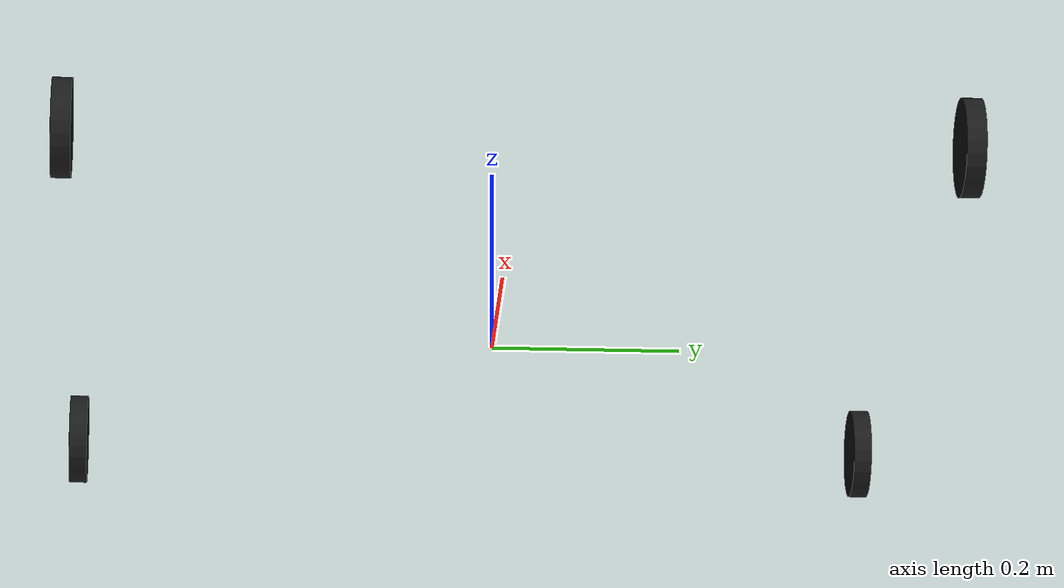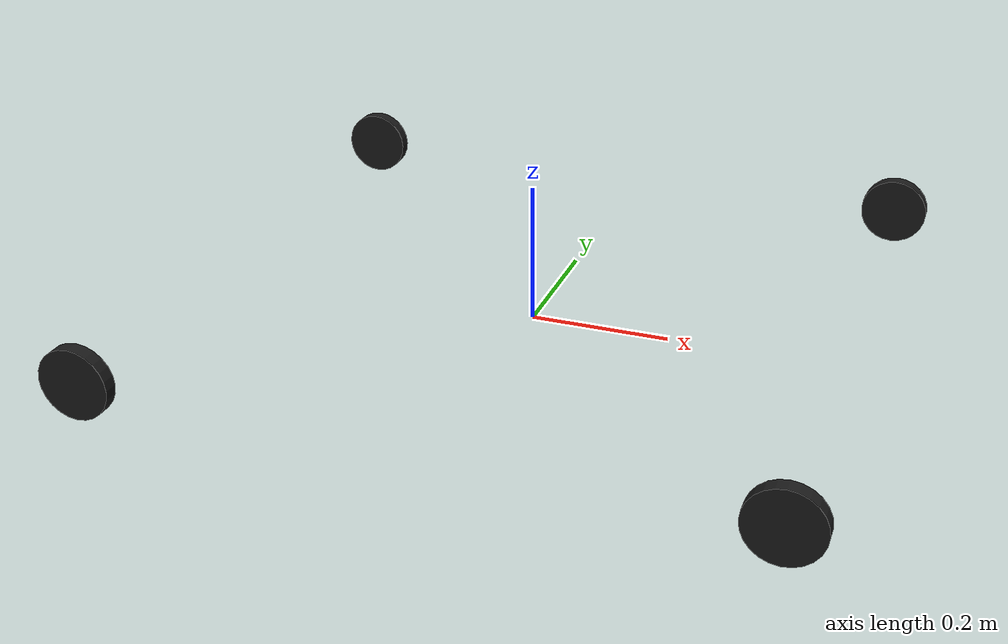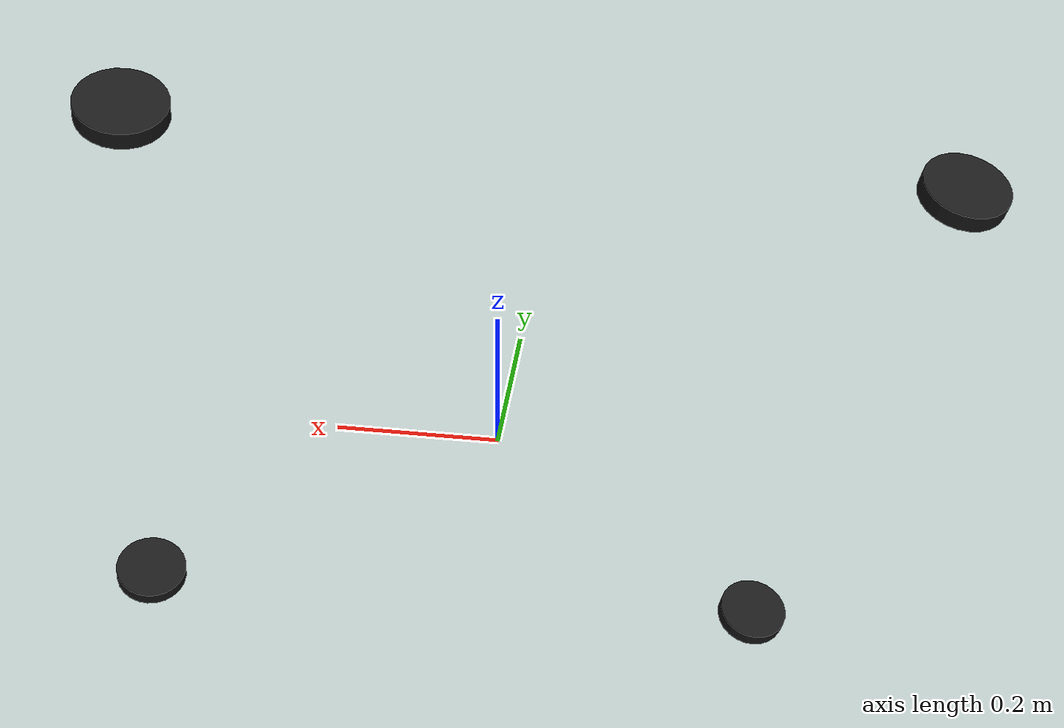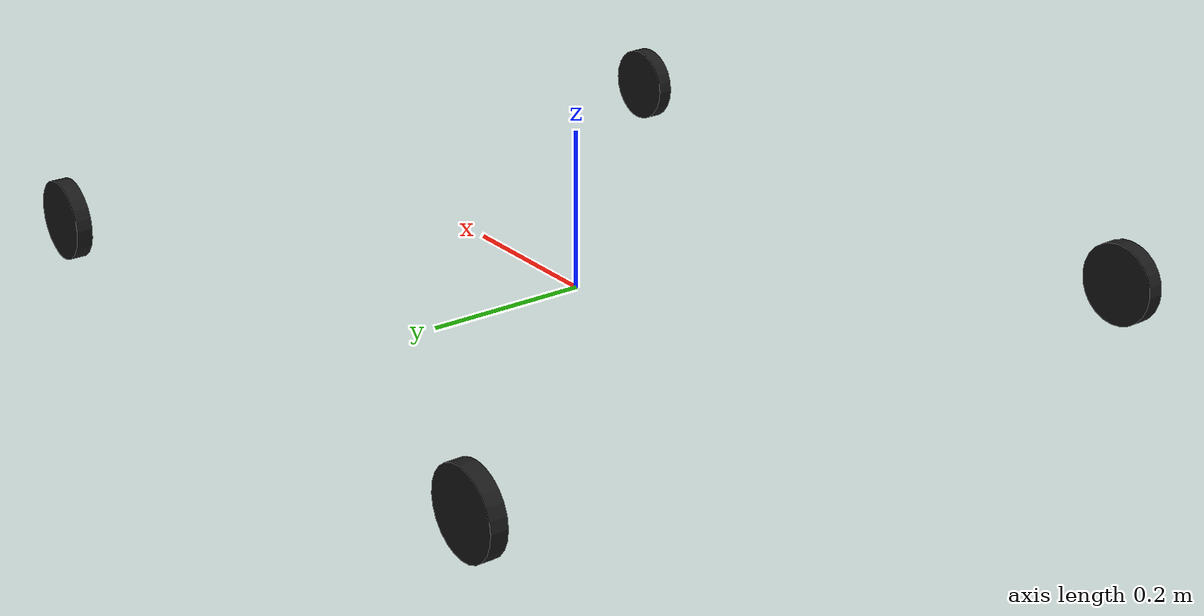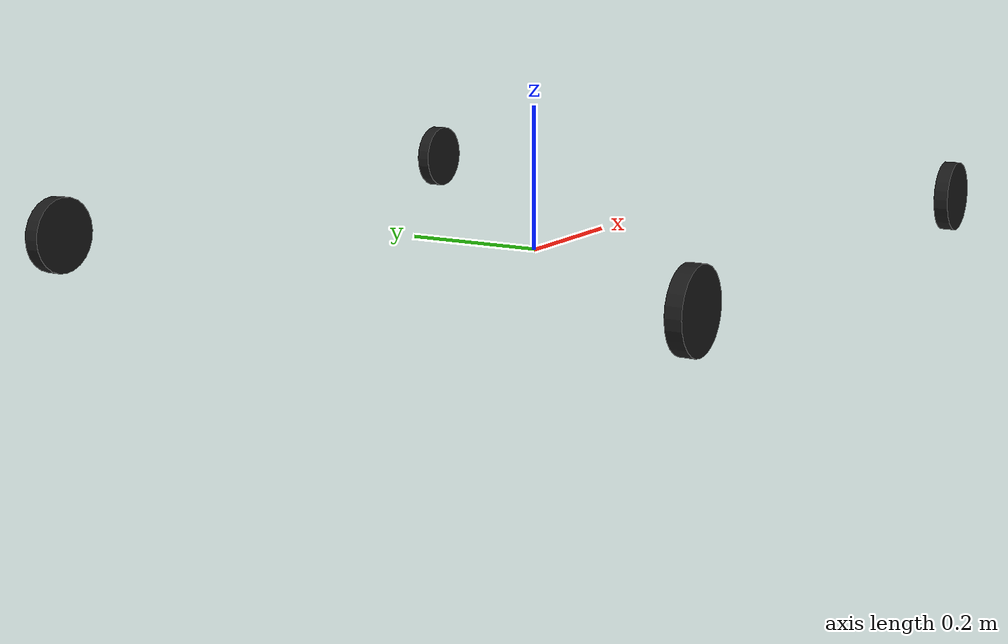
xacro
<?xml version="1.0"?>
<robot name="swerve_robot" xmlns:xacro="http://ros.org/wiki/xacro">

  <!-- Parameters           -->
  <xacro:property name="wheel_radius" value="0.05"/>
  <xacro:property name="wheel_width"  value="0.02"/>
  <xacro:property name="color_alpha" value="1.0"/>

  <!-- Base link             -->
  <link name="base_link"/>

  <!-- Wheel module macro    -->
  <xacro:macro name="swerve" params="steer_name wheel_name x y">

    <!-- steer link -->
    <link name="${steer_name}_link" />

    <!-- steer joint -->
    <joint name="${steer_name}" type="continuous">
      <parent link="base_link"/>
      <child link="${steer_name}_link"/>
      <origin xyz="${x} ${y} ${wheel_radius}" rpy="0 0 0"/>
      <axis xyz="0 0 1"/>
    </joint>

    <!-- wheel link -->
    <link name="${wheel_name}_link">
      <visual>
        <geometry>
          <cylinder radius="${wheel_radius}" length="${wheel_width}"/>
        </geometry>
        <origin rpy="1.5708 0 0"/>
        <material name="black">
          <color rgba="0.1 0.1 0.1 ${color_alpha}"/>
        </material>
      </visual>
    </link>

    <!-- drive joint -->
    <joint name="${wheel_name}" type="continuous">
      <parent link="${steer_name}_link"/>
      <child link="${wheel_name}_link"/>
      <origin xyz="0 0 0" rpy="0 0 0"/>
      <axis xyz="0 1 0"/>
    </joint>

  </xacro:macro>

  <!-- Wheel instances       -->
  <xacro:swerve steer_name="swerve_steer_0" wheel_name="swerve_wheel_0" x="0.45"  y="0.45"/>
  <xacro:swerve steer_name="swerve_steer_1" wheel_name="swerve_wheel_1" x="-0.45" y="0.45"/>
  <xacro:swerve steer_name="swerve_steer_2" wheel_name="swerve_wheel_2" x="-0.45" y="-0.45"/>
  <xacro:swerve steer_name="swerve_steer_3" wheel_name="swerve_wheel_3" x="0.45"  y="-0.45"/>

  <!-- Lidar Front          -->
  <link name="lidar_front"/>
  <joint name="base_to_lidar_front" type="fixed">
    <parent link="base_link"/>
    <child link="lidar_front"/>
    <origin xyz="0.4 0 0" rpy="0 0 0"/>
  </joint>

  <!-- Lidar Rear           -->
  <link name="lidar_rear"/>
  <joint name="base_to_lidar_rear" type="fixed">
    <parent link="base_link"/>
    <child link="lidar_rear"/>
    <origin xyz="-0.4 0 0" rpy="0 0 3.1415926535"/> <!-- rpy = 0 0 pi -->
  </joint>
</robot>
